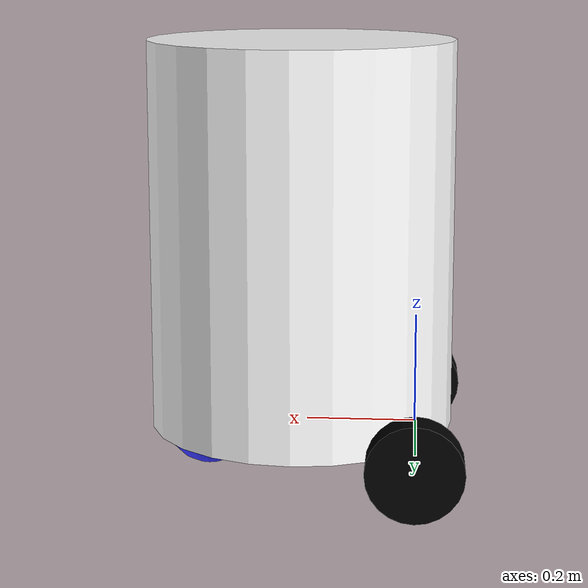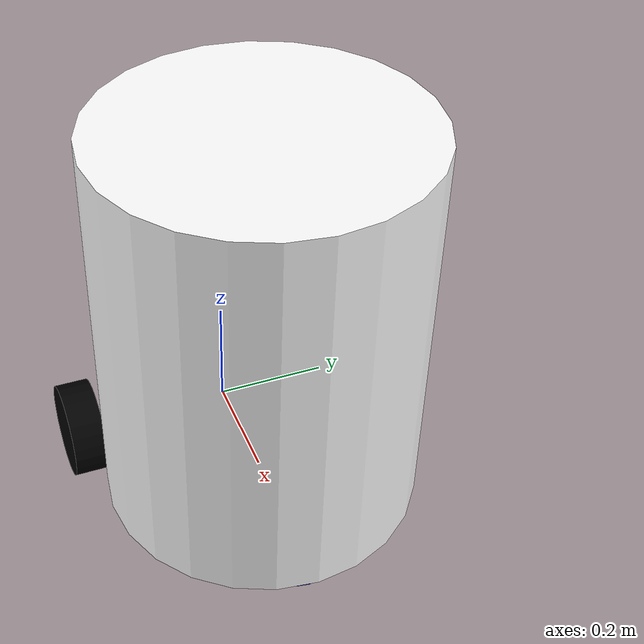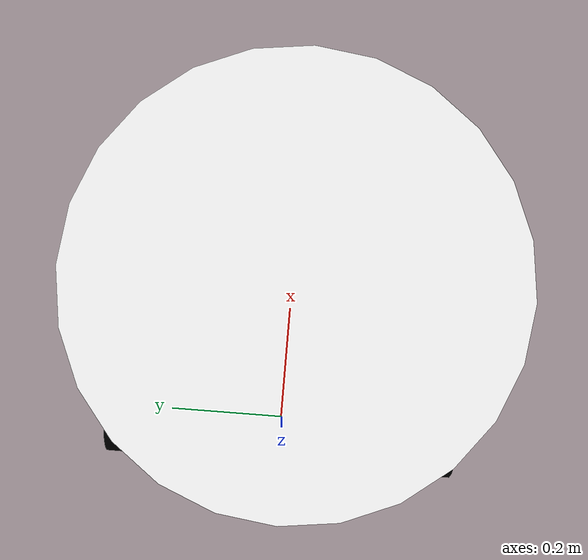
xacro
<?xml version="1.0"?>
<robot xmlns:xacro="http://www.ros.org/wiki/xacro">

    <xacro:include filename="inertial_macros.xacro" />

    <material name="white">
        <color rgba="1 1 1 1"/>
    </material>

    <material name="orange">
        <color rgba="1 0.3 0.1 1"/>
    </material>

    <material name="blue">
        <color rgba="0.2 0.2 1 1"/>
    </material>

    <material name="black">
        <color rgba="0 0 0 1"/>
    </material>

    <link name="base_link">

    </link>

    <joint name="chassis_joint" type="fixed">
    <parent link="base_link"/>
    <child link="chassis"/>
    <origin xyz="-0.07 0 0"/>
    </joint>

    <link name="chassis">
    <visual>
        <origin xyz="0.28 0 0.35" rpy="0 0 0"/>
        <geometry>
            <cylinder length="0.7" radius="0.275"/>
        </geometry>
        <material name="white"/>
    </visual>
    <collision>
        <origin xyz="0.28 0 0.35" rpy="0 0 0"/>
        <geometry>
            <cylinder length="0.7" radius="0.275"/>
        </geometry>
    </collision>
   <xacro:inertial_cylinder mass="0.1" length="0.7" radius="0.275">
        <origin xyz="0 0 0" rpy="0 0 0"/>
    </xacro:inertial_cylinder>
    </link>

    <gazebo reference="chassis">
    <material>Gazebo/White</material>
    </gazebo>

    <!-- LEFT WHEEL -->

    <joint name="left_wheel_joint" type="continuous">
    <parent link="base_link"/>
    <child link="left_wheel"/>
    <origin xyz="0 0.28 0" rpy="-${pi/2} 0 0"/>
    <axis xyz="0 0 1"/>
    </joint>

    <link name="left_wheel">
    <visual>
        <geometry>
            <cylinder length="0.06" radius="0.085" />/>
        </geometry>
        <material name="black"/>
    </visual>
    <collision>
        <geometry>
            <cylinder length="0.06" radius="0.085" />/>
        </geometry>
        <material name="black"/>
    </collision>
    <xacro:inertial_cylinder mass="0.1" length="0.06" radius="0.085">
        <origin xyz="0 0 0" rpy="0 0 0"/>
    </xacro:inertial_cylinder>
    </link>

    <gazebo reference="left_wheel">
    <material>Gazebo/Black</material>
    </gazebo>

    <!-- RIGHT WHEEL -->

    <joint name="right_wheel_joint" type="continuous">
    <parent link="base_link"/>
    <child link="right_wheel"/>
    <origin xyz="0 -0.28 0" rpy="${pi/2} 0 0"/>
    <axis xyz="0 0 -1"/>
    </joint>

    <link name="right_wheel">
    <visual>
        <geometry>
            <cylinder length="0.06" radius="0.085" />/>
        </geometry>
        <material name="black"/>
    </visual>
    <collision>
        <geometry>
            <cylinder length="0.06" radius="0.085" />/>
        </geometry>
        <material name="black"/>
    </collision>
    <xacro:inertial_cylinder mass="0.1" length="0.06" radius="0.085">
        <origin xyz="0 0 0" rpy="0 0 0"/>
    </xacro:inertial_cylinder>
    </link>

    <gazebo reference="right_wheel">
    <material>Gazebo/Black</material>
    </gazebo>

    <!-- CASTER WHEEL -->

    <joint name="caster_wheel_joint" type="fixed">
    <parent link="chassis"/>
    <child link="caster_wheel"/>
    <origin xyz="0.45 0 0" rpy="0 0 0"/>
    </joint>

    <link name="caster_wheel">
    <visual>
        <geometry>
            <sphere radius="0.085" />
        </geometry>
        <material name="blue"/>
    </visual>
    <collision>
        <geometry>
            <sphere radius="0.085" />
        </geometry>
        <material name="blue"/>
    </collision>
    <xacro:inertial_sphere mass="0.1" radius="0.085">
        <origin xyz="0 0 0" rpy="0 0 0"/>
    </xacro:inertial_sphere>
    </link>

    <gazebo reference="caster_wheel">
        <material>Gazebo/Blue</material>
        <mu1 value="0.001"/>
        <mu2 value="0.001"/>
    </gazebo>

</robot>
